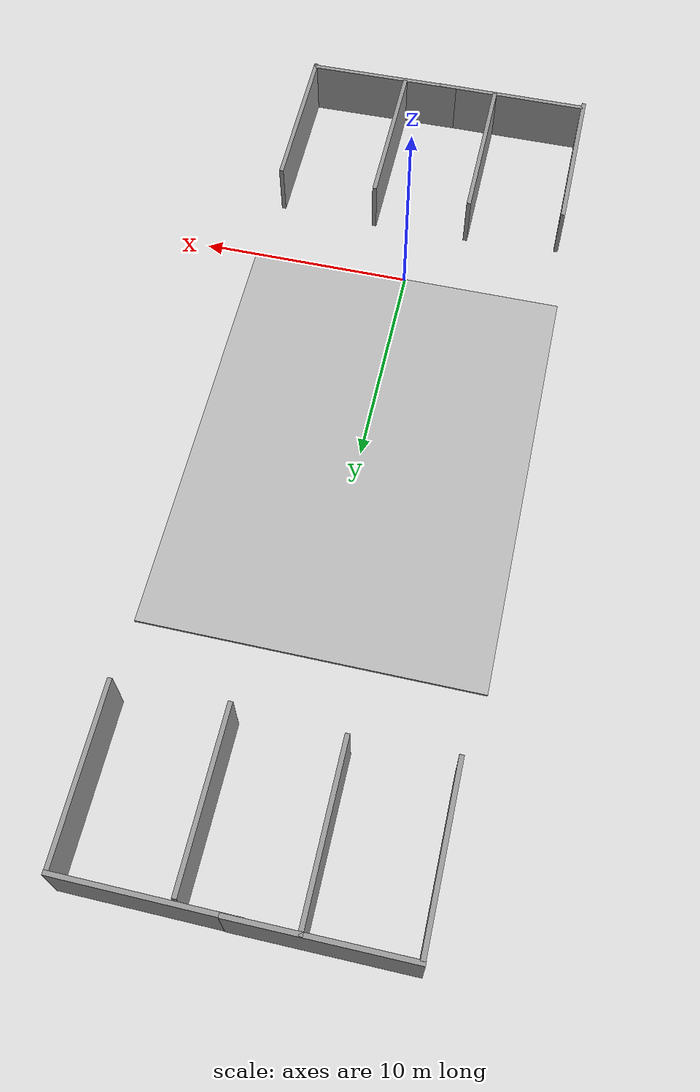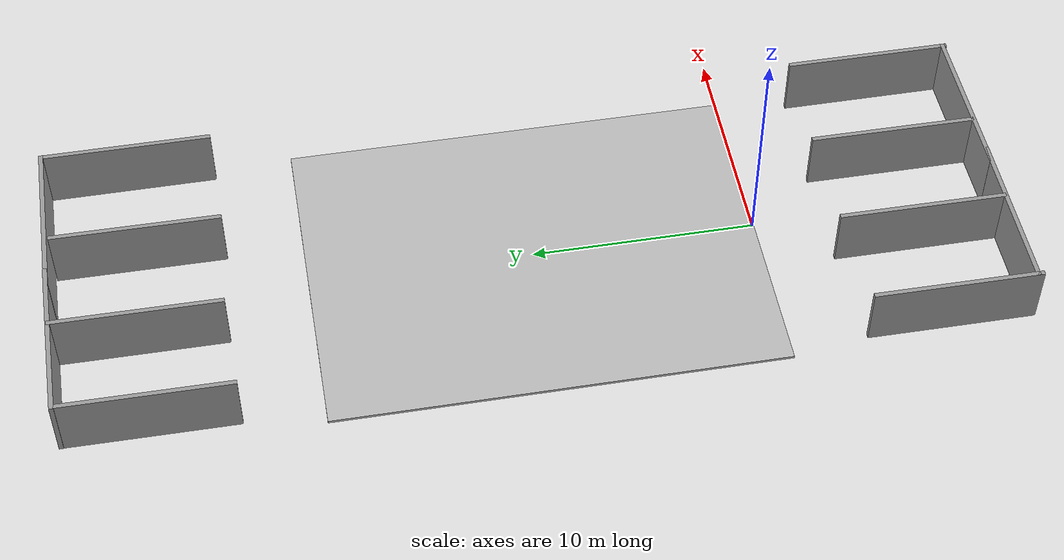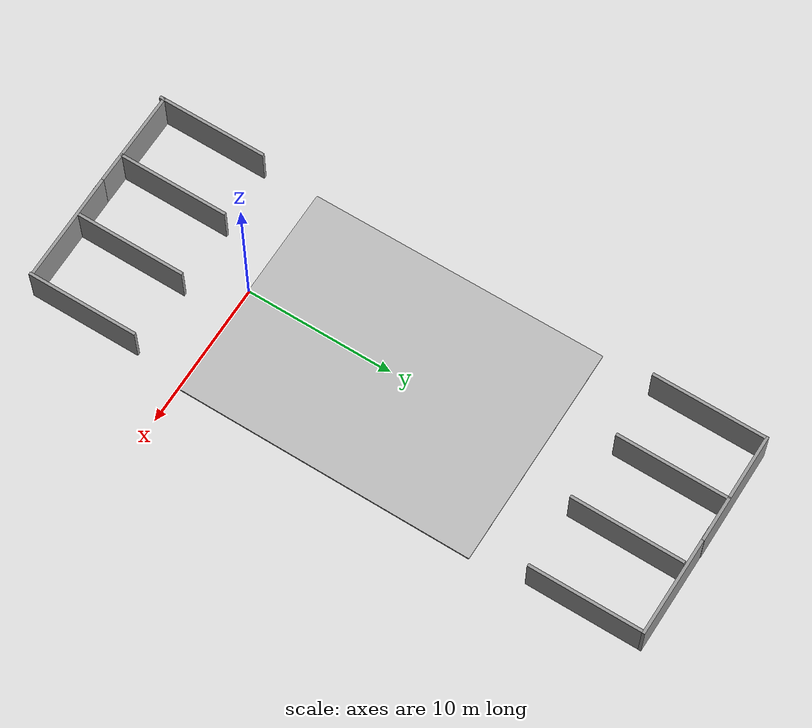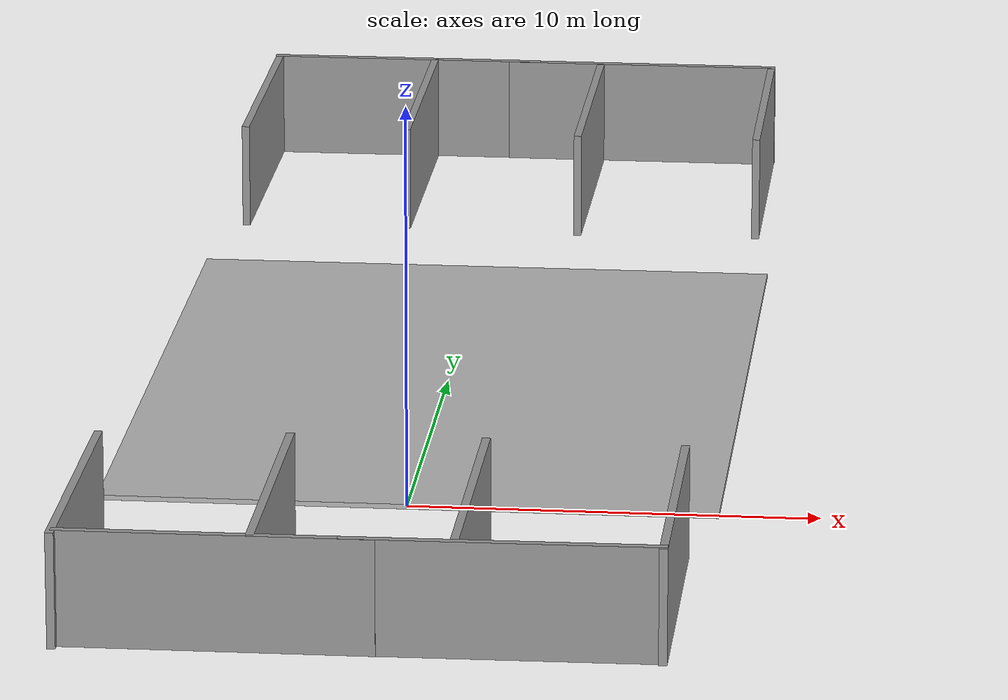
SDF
<sdf version="1.6">
 <world name="default">
  <gravity>0 0 -9.8</gravity>
  <physics name="default_physics" default="0" type="ode">
   <max_step_size>0.001</max_step_size>
   <real_time_factor>1</real_time_factor>
   <real_time_update_rate>1000</real_time_update_rate>
  </physics>
  <model name="warehouse_floor">
   <pose>0 10 0  0 0 0</pose>
   <static>true</static>
   <link name="body">
    <visual name="visual">
     <geometry><mesh><uri>file://warehouse_floor/meshes/NEWGROUND_TEXTURED.dae</uri></mesh></geometry>
    </visual>
   </link>
  </model>
  <light name="Warehouse_CeilingLight_003" type="point">
   <pose>0 0 9 0 -0 0</pose>
   <diffuse>0.5 0.5 0.5 1</diffuse>
   <specular>0.2 0.2 0.2 1</specular>
   <attenuation>
    <range>80</range>
    <constant>0.3</constant>
    <linear>0.01</linear>
    <quadratic>0.001</quadratic>
   </attenuation>
   <direction>0.1 0.1 -1</direction>
  </light>
  <magnetic_field>6e-06 2.3e-05 -4.2e-05</magnetic_field>
  <atmosphere type="adiabatic"/>
  <scene><ambient>0.4 0.4 0.4 1</ambient><background>0.7 0.7 0.7 1</background><shadows>1</shadows></scene>
  <spherical_coordinates>
   <surface_model>EARTH_WGS84</surface_model>
   <latitude_deg>0</latitude_deg>
   <longitude_deg>0</longitude_deg>
   <elevation>0</elevation>
   <heading_deg>0</heading_deg>
  </spherical_coordinates>
  <model name="grey_wall_clone">
   <static>1</static>
   <link name="link">
    <pose>0 0 1.4 0 -0 0</pose>
    <collision name="collision"><geometry><box><size>7.5 0.2 2.8</size></box></geometry></collision>
    <visual name="visual">
     <cast_shadows>0</cast_shadows>
     <geometry><box><size>7.5 0.2 2.8</size></box></geometry>
     <material>
      <script>
       <uri>model://grey_wall/materials/scripts</uri>
       <uri>model://grey_wall/materials/textures</uri>
       <name>vrc/grey_wall</name>
      </script>
     </material>
    </visual>
   </link>
   <pose>-2.44393 -6.89506 0 0 0 -1.57405</pose>
  </model>
  <model name="grey_wall_clone_clone">
   <static>1</static>
   <link name="link">
    <pose>0 0 1.4 0 -0 0</pose>
    <collision name="collision"><geometry><box><size>7.5 0.2 2.8</size></box></geometry></collision>
    <visual name="visual">
     <cast_shadows>0</cast_shadows>
     <geometry><box><size>7.5 0.2 2.8</size></box></geometry>
     <material>
      <script>
       <uri>model://grey_wall/materials/scripts</uri>
       <uri>model://grey_wall/materials/textures</uri>
       <name>vrc/grey_wall</name>
      </script>
     </material>
    </visual>
   </link>
   <pose>2.21072 -6.83062 0 0 0 -1.57278</pose>
  </model>
  <model name="grey_wall_clone_clone_0">
   <static>1</static>
   <link name="link">
    <pose>0 0 1.4 0 -0 0</pose>
    <collision name="collision"><geometry><box><size>7.5 0.2 2.8</size></box></geometry></collision>
    <visual name="visual">
     <cast_shadows>0</cast_shadows>
     <geometry><box><size>7.5 0.2 2.8</size></box></geometry>
     <material>
      <script>
       <uri>model://grey_wall/materials/scripts</uri>
       <uri>model://grey_wall/materials/textures</uri>
       <name>vrc/grey_wall</name>
      </script>
     </material>
    </visual>
   </link>
   <pose>-3.34076 -10.6291 0 0 0 -3.14005</pose>
  </model>
  <model name="grey_wall_clone_clone_clone">
   <static>1</static>
   <link name="link">
    <pose>0 0 1.4 0 -0 0</pose>
    <collision name="collision"><geometry><box><size>7.5 0.2 2.8</size></box></geometry></collision>
    <visual name="visual">
     <cast_shadows>0</cast_shadows>
     <geometry><box><size>7.5 0.2 2.8</size></box></geometry>
     <material>
      <script>
       <uri>model://grey_wall/materials/scripts</uri>
       <uri>model://grey_wall/materials/textures</uri>
       <name>vrc/grey_wall</name>
      </script>
     </material>
    </visual>
   </link>
   <pose>3.29634 -10.5818 0 0 -0 0.010746</pose>
  </model>
  <model name="grey_wall_clone_clone_clone_clone">
   <static>1</static>
   <link name="link">
    <pose>0 0 1.4 0 -0 0</pose>
    <collision name="collision"><geometry><box><size>7.5 0.2 2.8</size></box></geometry></collision>
    <visual name="visual">
     <cast_shadows>0</cast_shadows>
     <geometry><box><size>7.5 0.2 2.8</size></box></geometry>
     <material>
      <script>
       <uri>model://grey_wall/materials/scripts</uri>
       <uri>model://grey_wall/materials/textures</uri>
       <name>vrc/grey_wall</name>
      </script>
     </material>
    </visual>
   </link>
   <pose>6.94802 -6.96222 0 0 -0 1.57327</pose>
  </model>
  <model name="grey_wall_clone_clone_1">
   <static>1</static>
   <link name="link">
    <pose>0 0 1.4 0 -0 0</pose>
    <collision name="collision"><geometry><box><size>7.5 0.2 2.8</size></box></geometry></collision>
    <visual name="visual">
     <cast_shadows>0</cast_shadows>
     <geometry><box><size>7.5 0.2 2.8</size></box></geometry>
     <material>
      <script>
       <uri>model://grey_wall/materials/scripts</uri>
       <uri>model://grey_wall/materials/textures</uri>
       <name>vrc/grey_wall</name>
      </script>
     </material>
    </visual>
   </link>
   <pose>-6.98999 -7.17166 0 0 0 -1.57405</pose>
  </model>
  <model name="grey_wall_clone_clone_clone_0">
   <static>1</static>
   <link name="link">
    <pose>0 0 1.4 0 -0 0</pose>
    <collision name="collision"><geometry><box><size>7.5 0.2 2.8</size></box></geometry></collision>
    <visual name="visual">
     <cast_shadows>0</cast_shadows>
     <geometry><box><size>7.5 0.2 2.8</size></box></geometry>
     <material>
      <script>
       <uri>model://grey_wall/materials/scripts</uri>
       <uri>model://grey_wall/materials/textures</uri>
       <name>vrc/grey_wall</name>
      </script>
     </material>
    </visual>
   </link>
   <pose>2.18719 27.1717 0 0.000827 2.3e-05 -1.5748</pose>
  </model>
  <model name="grey_wall_clone_clone_clone_clone_clone">
   <static>1</static>
   <link name="link">
    <pose>0 0 1.4 0 -0 0</pose>
    <collision name="collision"><geometry><box><size>7.5 0.2 2.8</size></box></geometry></collision>
    <visual name="visual">
     <cast_shadows>0</cast_shadows>
     <geometry><box><size>7.5 0.2 2.8</size></box></geometry>
     <material>
      <script>
       <uri>model://grey_wall/materials/scripts</uri>
       <uri>model://grey_wall/materials/textures</uri>
       <name>vrc/grey_wall</name>
      </script>
     </material>
    </visual>
   </link>
   <pose>7.00632 27.2755 0 0 -0 1.57327</pose>
  </model>
  <model name="grey_wall_clone_clone_1_clone">
   <static>1</static>
   <link name="link">
    <pose>0 0 1.4 0 -0 0</pose>
    <collision name="collision"><geometry><box><size>7.5 0.2 2.8</size></box></geometry></collision>
    <visual name="visual">
     <cast_shadows>0</cast_shadows>
     <geometry><box><size>7.5 0.2 2.8</size></box></geometry>
     <material>
      <script>
       <uri>model://grey_wall/materials/scripts</uri>
       <uri>model://grey_wall/materials/textures</uri>
       <name>vrc/grey_wall</name>
      </script>
     </material>
    </visual>
   </link>
   <pose>-6.9112 27.2919 0 0 0 -1.57405</pose>
  </model>
  <model name="grey_wall_clone_clone_2">
   <static>1</static>
   <link name="link">
    <pose>0 0 1.4 0 -0 0</pose>
    <collision name="collision"><geometry><box><size>7.5 0.2 2.8</size></box></geometry></collision>
    <visual name="visual">
     <cast_shadows>0</cast_shadows>
     <geometry><box><size>7.5 0.2 2.8</size></box></geometry>
     <material>
      <script>
       <uri>model://grey_wall/materials/scripts</uri>
       <uri>model://grey_wall/materials/textures</uri>
       <name>vrc/grey_wall</name>
      </script>
     </material>
    </visual>
   </link>
   <pose>-2.51008 27.4289 0 0 0 -1.57405</pose>
  </model>
  <model name="grey_wall_clone_clone_0_clone">
   <static>1</static>
   <link name="link">
    <pose>0 0 1.4 0 -0 0</pose>
    <collision name="collision"><geometry><box><size>7.5 0.2 2.8</size></box></geometry></collision>
    <visual name="visual">
     <cast_shadows>0</cast_shadows>
     <geometry><box><size>7.5 0.2 2.8</size></box></geometry>
     <material>
      <script>
       <uri>model://grey_wall/materials/scripts</uri>
       <uri>model://grey_wall/materials/textures</uri>
       <name>vrc/grey_wall</name>
      </script>
     </material>
    </visual>
   </link>
   <pose>-3.26515 31.105 0 0 0 -3.14005</pose>
  </model>
  <model name="grey_wall_clone_clone_clone_0_clone">
   <static>1</static>
   <link name="link">
    <pose>0 0 1.4 0 -0 0</pose>
    <collision name="collision"><geometry><box><size>7.5 0.2 2.8</size></box></geometry></collision>
    <visual name="visual">
     <cast_shadows>0</cast_shadows>
     <geometry><box><size>7.5 0.2 2.8</size></box></geometry>
     <material>
      <script>
       <uri>model://grey_wall/materials/scripts</uri>
       <uri>model://grey_wall/materials/textures</uri>
       <name>vrc/grey_wall</name>
      </script>
     </material>
    </visual>
   </link>
   <pose>3.35521 31.0805 0 2.3e-05 -0.000827 -0.00425</pose>
  </model>
  <plugin name="gazebo_occupancy_map" filename="libgazebo_2Dmap_plugin.so">
   <map_resolution>0.1</map_resolution>
   <map_height>0.0</map_height>
   <map_size_x>100</map_size_x>
   <map_size_y>100</map_size_y>
   <init_robot_x>0</init_robot_x>
   <init_robot_y>0</init_robot_y>
  </plugin>
 </world>
</sdf>
